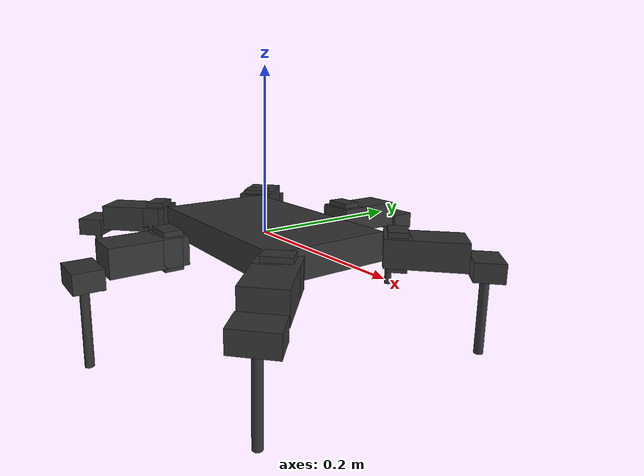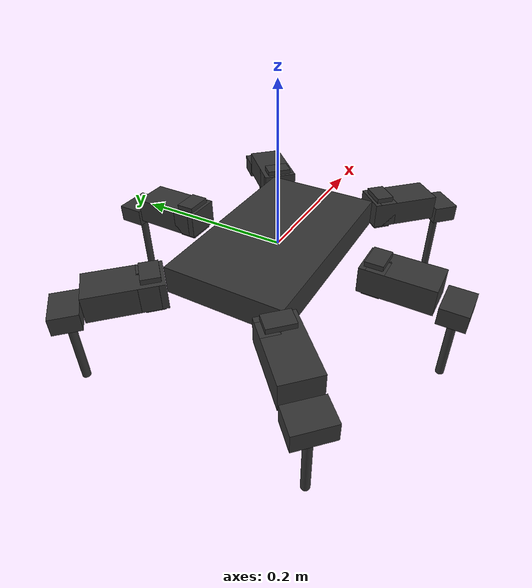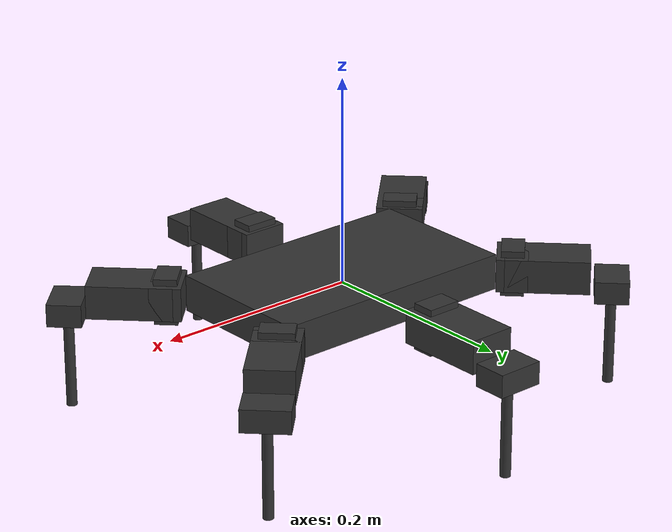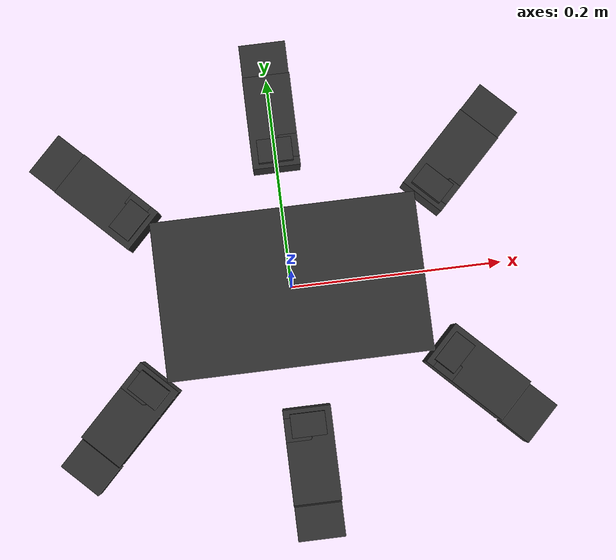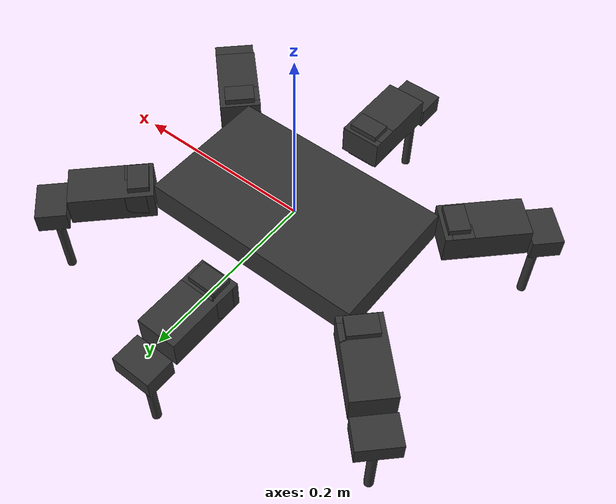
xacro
<?xml version="1.0" ?>
<robot name="Simple_Hexapod"  xmlns:xacro="http://www.ros.org/wiki/xacro">

  <xacro:include filename="$(find simple_hexapod_description)/urdf/simple_hexapod_urdf.xacro" />

  <link name="base_link"/>

    <xacro:simple_hexapod parent="base_link">
        <origin xyz="0 0 0" rpy="0 0 0" />
    </xacro:simple_hexapod>

  <gazebo>
    <plugin filename="libgazebo_ros_control.so" name="gazebo_ros_control">
      <robotNamespace>/simple_hexapod</robotNamespace>
    </plugin>
  </gazebo>

</robot>

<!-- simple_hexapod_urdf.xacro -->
<robot xmlns:xacro="http://www.ros.org/wiki/xacro">

<xacro:property name="connect_offset" value="0.02633" />
<xacro:property name="thigh_offset_x" value="0" />
<xacro:property name="thigh_offset_y" value="-0.0645" />
<xacro:property name="thigh_offset_z" value="-0.0145" />

<xacro:macro name="simple_hexapod" params="parent *origin">

      <joint name="j_simple_hexapod_attachment" type="fixed">
        <parent link="${parent}"/>
        <child link="MP_BODY"/>
        <xacro:insert_block name="origin" />
      </joint>

      <link name="MP_BODY">
        <inertial>
          <origin xyz="0 0 0" />
          <mass value="0.97559947"/>
          <inertia ixx="3.1081800"  ixy="-0.25460189"  ixz="2.0318174" iyy="6.3787776" iyz="0.16417863" izz="5.3316425" />
        </inertial>
        <visual>
          <!--origin xyz="-0.0235 0 -0.03525" rpy="0 0 0" /-->
          <origin xyz="0 0 0" rpy="0 0 0" />
          <geometry>
            <box size="0.25 0.15 0.035" />
          </geometry>
          <material name="Grey">
            <color rgba="0.20 0.20 0.20 1.0"/>
          </material>
        </visual>
        <collision>
          <origin xyz="0 0 0" rpy="0 0 0" />
          <geometry>
            <box size="0.25 0.15 0.035" />
          </geometry>

        </collision>
      </link>

      <gazebo reference="MP_BODY">
        <material>Gazebo/Grey</material>
      </gazebo>

    <xacro:leg_l xyz="0.1248 -0.06164  0.001116"  rpy="0 4.7123 0.7853981633974483" suffix="rf"/>
    <xacro:leg_l xyz="0 -0.1034  0.001116"  rpy="0 4.7123 0" suffix="rm"/>
    <xacro:leg_l xyz="-0.1248 -0.06164  0.001116"  rpy="0 4.7123 -0.7853981633974483" suffix="rr"/>

    <xacro:leg_l xyz="0.1248 0.06164  0.001116"  rpy="0 4.7123 2.356194490192345" suffix="lf"/>
    <xacro:leg_l xyz="0 0.1034  0.001116"  rpy="0 4.7123 3.14159" suffix="lm"/>
    <xacro:leg_l xyz="-0.1248 0.06164  0.001116"  rpy="0 4.7123 3.9269908169872414" suffix="lr"/>

</xacro:macro>

 <xacro:macro name="leg_l" params="xyz rpy suffix">

  <link name="c1_${suffix}">
    <inertial>
      <origin xyz="0 -${connect_offset} 0" rpy="0 0 0"  />
      <mass value="0.024357719"/>
     <inertia ixx="0.0051411124"  ixy="-0.00057530255"  ixz="-0.000024729049" iyy="0.0081915737" iyz="-0.000019223094" izz="0.0011379812" />
    </inertial>
    <visual>
      <origin xyz="0 -0.0252 0" rpy="0 0 0"  />
      <geometry>
        <box size="0.045 0.022 0.0325" />
      </geometry>
      <material name="Grey">
        <color rgba="0.20 0.20 0.20 1.0"/>
      </material>
    </visual>
    <collision>
      <origin xyz="0 -${connect_offset} 0" rpy="0 0 0"  />
      <geometry>
        <box size="0.045 0.022 0.0325" />
      </geometry>
    </collision>
  </link>

  <link name="c2_${suffix}">
    <inertial>
      <origin xyz="0 -${connect_offset} 0" rpy="0 0 0"  />
      <mass value="0.024357719"/>
     <inertia ixx="0.0051411124"  ixy="-0.00057530255"  ixz="-0.000024729049" iyy="0.0081915737" iyz="-0.000019223094" izz="0.0011379812" />
    </inertial>
    <visual>
      <origin xyz="0 -0.0252 0" rpy="0 0 0"  />
      <geometry>
        <box size="0.045 0.022 0.0325" />
      </geometry>
      <material name="Grey">
        <color rgba="0.20 0.20 0.20 1.0"/>
      </material>
    </visual>
    <collision>
      <origin xyz="0 -${connect_offset} 0" rpy="0 0 0"  />
      <geometry>
        <box size="0.045 0.022 0.0325" />
      </geometry>
    </collision>
  </link>

  <link name="thigh_${suffix}">
    <inertial>
      <origin xyz="0 0 0" rpy="0 0 0"  />
      <mass value="0.024357719"/>
     <inertia ixx="0.0051411124"  ixy="-0.00057530255"  ixz="-0.000024729049" iyy="0.0081915737" iyz="-0.000019223094" izz="0.0011379812" />
    </inertial>
    <visual>
      <origin xyz="0 0 0" rpy="0 0 0"  />
      <geometry>
        <box size="0.045 0.088 0.0325" />
      </geometry>
      <material name="Grey">
        <color rgba="0.20 0.20 0.20 1.0"/>
      </material>
    </visual>
    <collision>
      <origin xyz="0 0 0" rpy="0 0 0"  />
      <geometry>
        <box size="0.045 0.088 0.0325" />
      </geometry>
    </collision>
  </link>

  <link name="tibia_${suffix}">
    <inertial>
      <origin xyz="0 0 0" rpy="0 0 0"  />
      <mass value="0.024357719"/>
     <inertia ixx="0.0051411124"  ixy="-0.00057530255"  ixz="-0.000024729049" iyy="0.0081915737" iyz="-0.000019223094" izz="0.0011379812" />
    </inertial>
    <visual>
      <origin xyz="0 0 0" rpy="0 0 0"  />
      <geometry>
        <box size="0.045 0.022 0.0325" />
      </geometry>
      <material name="Grey">
        <color rgba="0.20 0.20 0.20 1.0"/>
      </material>
    </visual>
    <collision>
      <origin xyz="0 0 0" rpy="0 0 0"  />
      <geometry>
        <box size="0.045 0.022 0.0325" />
      </geometry>
    </collision>
  </link>

  <link name="tibia_ext_${suffix}">
    <inertial>
      <origin xyz="0 0 0" rpy="0 0 0"  />
      <mass value="0.024357719"/>
     <inertia ixx="0.0051411124"  ixy="-0.00057530255"  ixz="-0.000024729049" iyy="0.0081915737" iyz="-0.000019223094" izz="0.0011379812" />
    </inertial>
    <visual>
      <origin xyz="0 0 -0.05" rpy="0 0 0"  />
      <geometry>
        <cylinder length="0.1" radius="0.005"/>
      </geometry>
      <material name="Grey">
        <color rgba="0.20 0.20 0.20 1.0"/>
      </material>
    </visual>
    <collision>
      <origin xyz="0 0 -0.05" rpy="0 0 0"  />
      <geometry>
        <cylinder length="0.1" radius="0.005"/>
      </geometry>
    </collision>
  </link>

  <joint name="j_c1_${suffix}" type="revolute">
    <parent link="MP_BODY"/>
    <child link="c1_${suffix}"/>
    <origin xyz="${xyz}" rpy="${rpy}" />
    <axis xyz="1 0 0" />
    <limit effort="2.8" velocity="5.6548668" lower="-2.6179939" upper="2.6179939" />
  </joint>

  <joint name="j_c2_${suffix}" type="fixed">
    <parent link="c1_${suffix}"/>
    <child link="c2_${suffix}"/>
    <origin xyz="0 -0.054 0" rpy="0 1.5704 3.14159" />
  </joint>

  <joint name="j_thigh_${suffix}" type="revolute">
    <parent link="c2_${suffix}"/>
    <child link="thigh_${suffix}"/>
    <origin xyz="0 0 0" rpy=" 0 3.14159 3.14159" />
    <axis xyz="1 0 0" />
    <limit effort="2.8" velocity="5.6548668" lower="-2.6179939" upper="2.6179939" />
  </joint>

  <joint name="j_tibia_${suffix}" type="revolute">
    <parent link="thigh_${suffix}"/>
    <child link="tibia_${suffix}"/>
    <origin xyz="${thigh_offset_x} ${thigh_offset_y} ${thigh_offset_z}" rpy="-1.5707 0 3.14159" />
    <axis xyz="1 0 0" />
    <limit effort="2.8" velocity="5.6548668" lower="-2.6179939" upper="2.6179939" />
  </joint>

  <joint name="j_tibia_ext_${suffix}" type="fixed">
    <parent link="tibia_${suffix}"/>
    <child link="tibia_ext_${suffix}"/>
    <origin xyz="0 0 0" rpy="1.57075 0 0" />
  </joint>

   <transmission name="t_c1_${suffix}">
    <type>transmission_interface/SimpleTransmission</type>
    <joint name="j_c1_${suffix}">
      <hardwareInterface>EffortJointInterface</hardwareInterface>
    </joint>
    <actuator name="m_c1_${suffix}">
      <hardwareInterface>EffortJointInterface</hardwareInterface>
      <mechanicalReduction>1</mechanicalReduction>
    </actuator>
  </transmission>

   <transmission name="t_thigh_${suffix}">
    <type>transmission_interface/SimpleTransmission</type>
    <joint name="j_thigh_${suffix}">
      <hardwareInterface>EffortJointInterface</hardwareInterface>
    </joint>
    <actuator name="m_thigh_${suffix}">
      <hardwareInterface>EffortJointInterface</hardwareInterface>
      <mechanicalReduction>1</mechanicalReduction>
    </actuator>
  </transmission>

   <transmission name="t_tibia_${suffix}">
    <type>transmission_interface/SimpleTransmission</type>
    <joint name="j_tibia_${suffix}">
      <hardwareInterface>EffortJointInterface</hardwareInterface>
    </joint>
    <actuator name="m_tibia_${suffix}">
      <hardwareInterface>EffortJointInterface</hardwareInterface>
      <mechanicalReduction>1</mechanicalReduction>
    </actuator>
  </transmission>

  <gazebo reference="c1_${suffix}">
    <material>Gazebo/Grey</material>
  </gazebo>

  <gazebo reference="c2_${suffix}">
    <material>Gazebo/Grey</material>
  </gazebo>

  <gazebo reference="thigh_${suffix}">
    <material>Gazebo/Grey</material>
  </gazebo>

  <gazebo reference="tibia_${suffix}">
    <material>Gazebo/Grey</material>
  </gazebo>

</xacro:macro>

</robot>
